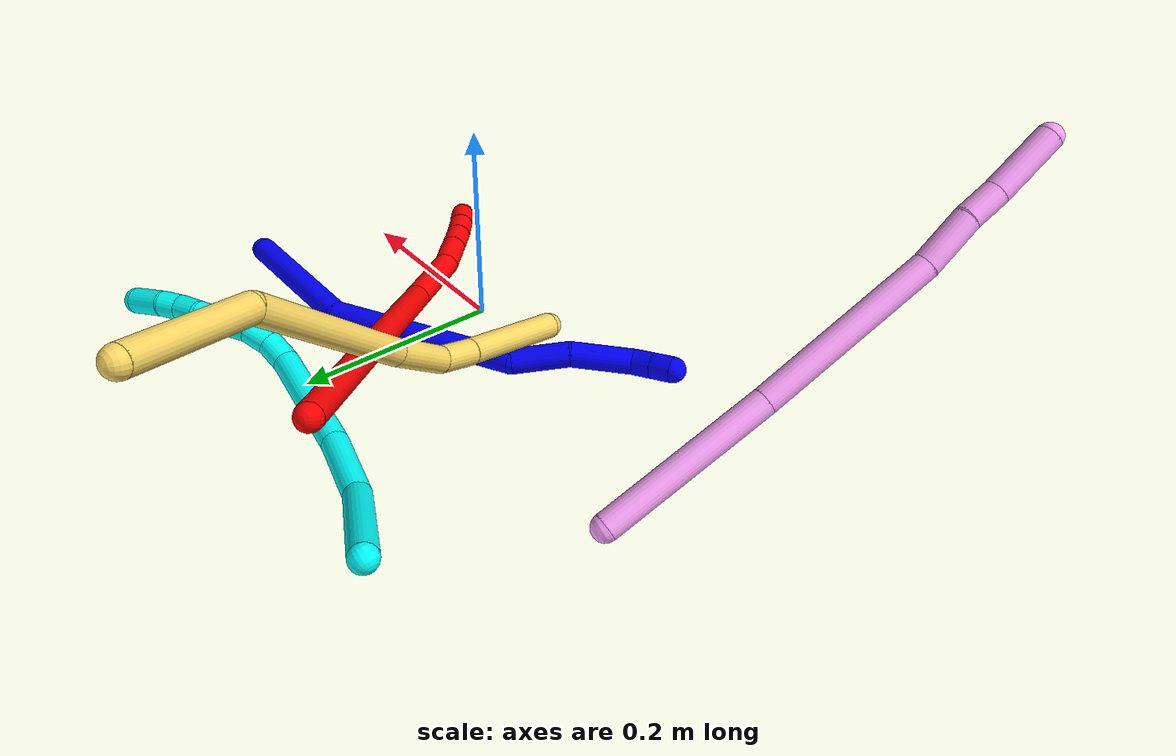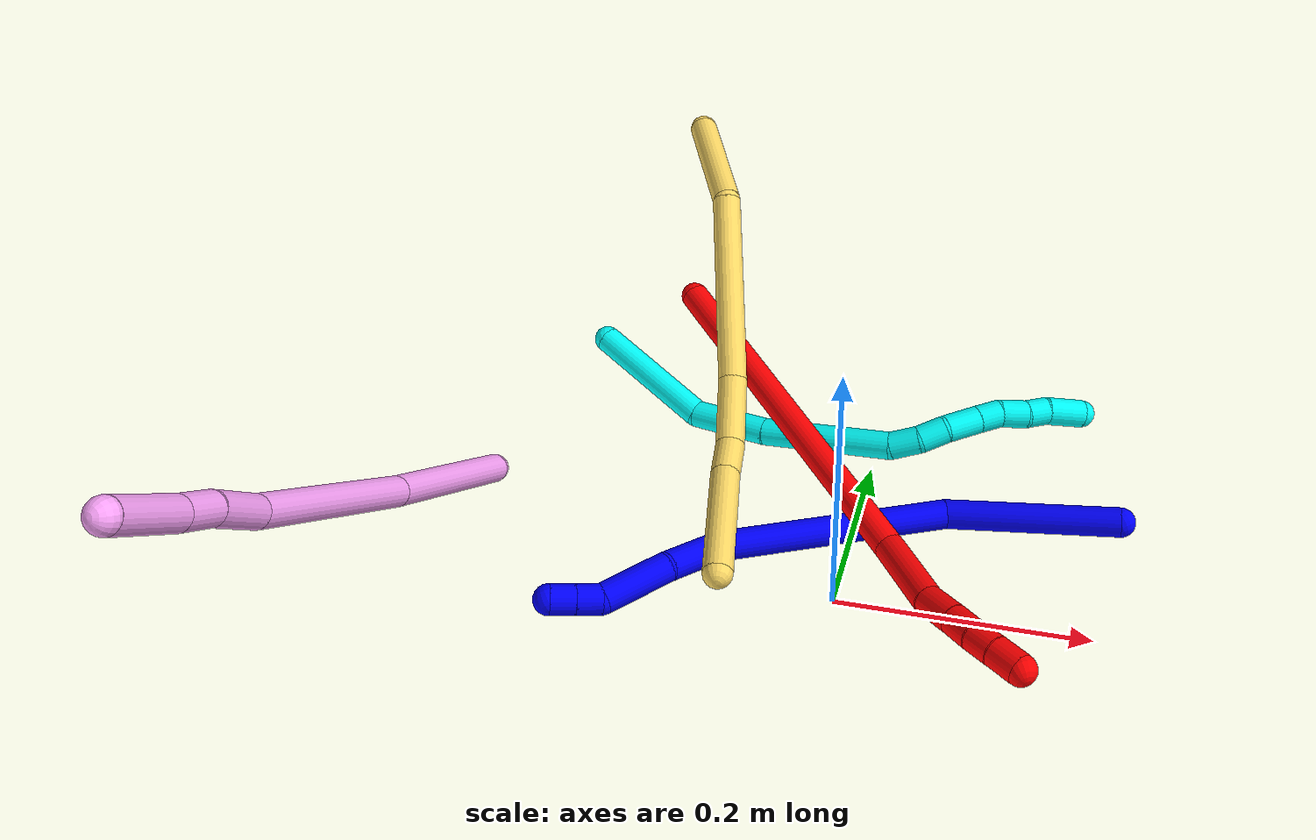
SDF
<sdf version="1.7">
 <world name="default">
  <plugin name="TubeGeneratorPlugin" filename="libtube_generator_plugin.so"/>
  <model name="photoneo_s_sensor">
   <static>1</static>
   <pose>0 0 2 1.57079 1.57079 3.14159</pose>
   <link name="link">
    <inertial><mass>0.1</mass></inertial>
    <sensor name="sensor" type="depth">
     <update_rate>30</update_rate>
     <camera>
      <horizontal_fov>1.22</horizontal_fov>
      <image><width>1920</width><height>1200</height><format>B8G8R8</format></image>
      <clip><near>0.1</near><far>4</far></clip>
      <depth_camera><output>points</output></depth_camera>
     </camera>
     <plugin name="camera_plugin" filename="libgazebo_ros_depth_camera.so">
      <baseline>0.2</baseline>
      <alwaysOn>1</alwaysOn>
      <updateRate>0.0</updateRate>
      <cameraName>camera_ir</cameraName>
      <imageTopicName>/camera/color/image_raw</imageTopicName>
      <cameraInfoTopicName>/camera/color/camera_info</cameraInfoTopicName>
      <depthImageTopicName>/camera/depth/image_raw</depthImageTopicName>
      <depthImageCameraInfoTopicName>/camera/depth/camera_info</depthImageCameraInfoTopicName>
      <pointCloudTopicName>/camera/depth/points</pointCloudTopicName>
      <frameName>fr_optical</frameName>
      <pointCloudCutoff>0.1</pointCloudCutoff>
      <pointCloudCutoffMax>2.0</pointCloudCutoffMax>
      <distortionK1>0</distortionK1>
      <distortionK2>0</distortionK2>
      <distortionK3>0</distortionK3>
      <distortionT1>0</distortionT1>
      <distortionT2>0</distortionT2>
      <CxPrime>0</CxPrime>
      <Cx>0</Cx>
      <Cy>0</Cy>
      <focalLength>0</focalLength>
      <hackBaseline>0</hackBaseline>
     </plugin>
    </sensor>
   </link>
  </model>
  <gravity>0 0 -9.8</gravity>
  <magnetic_field>6e-06 2.3e-05 -4.2e-05</magnetic_field>
  <atmosphere type="adiabatic"/>
  <physics name="default_physics" default="0" type="ode">
   <max_step_size>0.003</max_step_size>
   <real_time_factor>1</real_time_factor>
   <real_time_update_rate>1000</real_time_update_rate>
   <max_contacts>10000</max_contacts>
   <ode>
    <solver>
     <type>quick</type>
     <iters>100</iters>
     <sor>1.3</sor>
     <use_dynamic_moi_rescaling>0</use_dynamic_moi_rescaling>
    </solver>
    <constraints>
     <contact_max_correcting_vel>0</contact_max_correcting_vel>
     <contact_surface_layer>0.001</contact_surface_layer>
     <cfm>0</cfm>
     <erp>0.2</erp>
    </constraints>
   </ode>
  </physics>
  <scene><ambient>0.4 0.4 0.4 1</ambient><background>0.7 0.7 0.7 1</background><shadows>0</shadows></scene>
  <audio><device>default</device></audio>
  <spherical_coordinates>
   <surface_model>EARTH_WGS84</surface_model>
   <latitude_deg>0</latitude_deg>
   <longitude_deg>0</longitude_deg>
   <elevation>0</elevation>
   <heading_deg>0</heading_deg>
  </spherical_coordinates>
  <model name="bin">
   <static>1</static>
   <link name="bottom">
    <collision name="collision-bottom">
     <pose>0 0 -0.01 0 -0 0</pose>
     <geometry><box><size>0.8 0.6 0.02</size></box></geometry>
     <surface>
      <friction><ode><mu>100</mu><mu2>100</mu2></ode></friction>
      <contact><collide_bitmask>65535</collide_bitmask></contact>
     </surface>
    </collision>
   </link>
   <link name="west_wall">
    <collision name="collision-west_wall">
     <pose>-0.41 0 0.1 0 -0 0</pose>
     <geometry><box><size>0.02 0.6 0.2</size></box></geometry>
     <surface>
      <friction><ode><mu>100</mu><mu2>100</mu2></ode></friction>
      <contact><collide_bitmask>65535</collide_bitmask></contact>
     </surface>
    </collision>
   </link>
   <link name="east_wall">
    <collision name="collision-east_wall">
     <pose>0.41 0 0.1 0 -0 0</pose>
     <geometry><box><size>0.02 0.6 0.2</size></box></geometry>
     <surface>
      <friction><ode><mu>100</mu><mu2>100</mu2></ode></friction>
      <contact><collide_bitmask>65535</collide_bitmask></contact>
     </surface>
    </collision>
   </link>
   <link name="south_wall">
    <collision name="collision-south_wall">
     <pose>0 -0.31 0.1 0 -0 0</pose>
     <geometry><box><size>0.8 0.02 0.2</size></box></geometry>
     <surface>
      <friction><ode><mu>100</mu><mu2>100</mu2></ode></friction>
      <contact><collide_bitmask>65535</collide_bitmask></contact>
     </surface>
    </collision>
   </link>
   <link name="north_wall">
    <collision name="collision-north_wall">
     <pose>0 0.31 0.1 0 -0 0</pose>
     <geometry><box><size>0.8 0.02 0.2</size></box></geometry>
     <surface>
      <friction><ode><mu>100</mu><mu2>100</mu2></ode></friction>
      <contact><collide_bitmask>65535</collide_bitmask></contact>
     </surface>
    </collision>
   </link>
  </model>
  <model name="1">
   <static>0</static>
   <link name="1">
    <collision name="collision-cylinder-e_1_1_4">
     <pose>-0.064533 -0.00164 0.031621 0.051824 -1.11465 -0.032303</pose>
     <geometry><cylinder><radius>0.0125</radius><length>0.143765</length></cylinder></geometry>
     <surface>
      <friction><ode><mu>1.16</mu><mu2>1.16</mu2><slip1>0</slip1><slip2>0</slip2></ode></friction>
      <contact><ode><kp>1e+06</kp><kd>1</kd><max_vel>0</max_vel><min_depth>0.001</min_depth></ode></contact>
     </surface>
    </collision>
    <visual name="visual-cylinder-e_1_1_4">
     <pose>-0.064533 -0.00164 0.031621 0.051824 -1.11465 -0.032303</pose>
     <geometry><cylinder><radius>0.0125</radius><length>0.143765</length></cylinder></geometry>
     <material><ambient>0 0 1 1</ambient></material>
    </visual>
    <collision name="collision-cylinder-e_2_4_5">
     <pose>-0.214719 -0.045059 0.090187 0.997988 -1.0449 -0.608174</pose>
     <geometry><cylinder><radius>0.0125</radius><length>0.19807</length></cylinder></geometry>
     <surface>
      <friction><ode><mu>1.16</mu><mu2>1.16</mu2><slip1>0</slip1><slip2>0</slip2></ode></friction>
      <contact><ode><kp>1e+06</kp><kd>1</kd><max_vel>0</max_vel><min_depth>0.001</min_depth></ode></contact>
     </surface>
    </collision>
    <visual name="visual-cylinder-e_2_4_5">
     <pose>-0.214719 -0.045059 0.090187 0.997988 -1.0449 -0.608174</pose>
     <geometry><cylinder><radius>0.0125</radius><length>0.19807</length></cylinder></geometry>
     <material><ambient>0 0 1 1</ambient></material>
    </visual>
    <collision name="collision-cylinder-e_3_5_6">
     <pose>-0.317696 -0.108875 0.118557 1.50619 -0.665218 -0.626324</pose>
     <geometry><cylinder><radius>0.0125</radius><length>0.056135</length></cylinder></geometry>
     <surface>
      <friction><ode><mu>1.16</mu><mu2>1.16</mu2><slip1>0</slip1><slip2>0</slip2></ode></friction>
      <contact><ode><kp>1e+06</kp><kd>1</kd><max_vel>0</max_vel><min_depth>0.001</min_depth></ode></contact>
     </surface>
    </collision>
    <visual name="visual-cylinder-e_3_5_6">
     <pose>-0.317696 -0.108875 0.118557 1.50619 -0.665218 -0.626324</pose>
     <geometry><cylinder><radius>0.0125</radius><length>0.056135</length></cylinder></geometry>
     <material><ambient>0 0 1 1</ambient></material>
    </visual>
    <collision name="collision-cylinder-e_4_6_7">
     <pose>-0.358712 -0.149818 0.119112 1.61682 -0.896782 -0.933267</pose>
     <geometry><cylinder><radius>0.0125</radius><length>0.060645</length></cylinder></geometry>
     <surface>
      <friction><ode><mu>1.16</mu><mu2>1.16</mu2><slip1>0</slip1><slip2>0</slip2></ode></friction>
      <contact><ode><kp>1e+06</kp><kd>1</kd><max_vel>0</max_vel><min_depth>0.001</min_depth></ode></contact>
     </surface>
    </collision>
    <visual name="visual-cylinder-e_4_6_7">
     <pose>-0.358712 -0.149818 0.119112 1.61682 -0.896782 -0.933267</pose>
     <geometry><cylinder><radius>0.0125</radius><length>0.060645</length></cylinder></geometry>
     <material><ambient>0 0 1 1</ambient></material>
    </visual>
    <collision name="collision-cylinder-e_5_7_8">
     <pose>-0.390945 -0.173147 0.122324 0.8256 -0.956854 -0.44669</pose>
     <geometry><cylinder><radius>0.0125</radius><length>0.020901</length></cylinder></geometry>
     <surface>
      <friction><ode><mu>1.16</mu><mu2>1.16</mu2><slip1>0</slip1><slip2>0</slip2></ode></friction>
      <contact><ode><kp>1e+06</kp><kd>1</kd><max_vel>0</max_vel><min_depth>0.001</min_depth></ode></contact>
     </surface>
    </collision>
    <visual name="visual-cylinder-e_5_7_8">
     <pose>-0.390945 -0.173147 0.122324 0.8256 -0.956854 -0.44669</pose>
     <geometry><cylinder><radius>0.0125</radius><length>0.020901</length></cylinder></geometry>
     <material><ambient>0 0 1 1</ambient></material>
    </visual>
    <collision name="collision-cylinder-e_6_8_2">
     <pose>-0.407807 -0.181782 0.130644 0.782147 -0.948078 -0.416931</pose>
     <geometry><cylinder><radius>0.0125</radius><length>0.020484</length></cylinder></geometry>
     <surface>
      <friction><ode><mu>1.16</mu><mu2>1.16</mu2><slip1>0</slip1><slip2>0</slip2></ode></friction>
      <contact><ode><kp>1e+06</kp><kd>1</kd><max_vel>0</max_vel><min_depth>0.001</min_depth></ode></contact>
     </surface>
    </collision>
    <visual name="visual-cylinder-e_6_8_2">
     <pose>-0.407807 -0.181782 0.130644 0.782147 -0.948078 -0.416931</pose>
     <geometry><cylinder><radius>0.0125</radius><length>0.020484</length></cylinder></geometry>
     <material><ambient>0 0 1 1</ambient></material>
    </visual>
    <collision name="collision-sphere-2">
     <pose>-0.416127 -0.185993 0.134882 0 -0 0</pose>
     <geometry><sphere><radius>0.0125</radius></sphere></geometry>
     <surface>
      <friction><ode><mu>1.16</mu><mu2>1.16</mu2><slip1>0</slip1><slip2>0</slip2></ode></friction>
      <contact><ode><kp>1e+06</kp><kd>1</kd><max_vel>0</max_vel><min_depth>0.001</min_depth></ode></contact>
     </surface>
    </collision>
    <visual name="visual-sphere-2">
     <pose>-0.416127 -0.185993 0.134882 0 -0 0</pose>
     <geometry><sphere><radius>0.0125</radius></sphere></geometry>
     <material><ambient>0 0 1 1</ambient></material>
    </visual>
    <collision name="collision-sphere-4">
     <pose>-0.129066 -0.00328 0.063242 0 -0 0</pose>
     <geometry><sphere><radius>0.0125</radius></sphere></geometry>
     <surface>
      <friction><ode><mu>1.16</mu><mu2>1.16</mu2><slip1>0</slip1><slip2>0</slip2></ode></friction>
      <contact><ode><kp>1e+06</kp><kd>1</kd><max_vel>0</max_vel><min_depth>0.001</min_depth></ode></contact>
     </surface>
    </collision>
    <visual name="visual-sphere-4">
     <pose>-0.129066 -0.00328 0.063242 0 -0 0</pose>
     <geometry><sphere><radius>0.0125</radius></sphere></geometry>
     <material><ambient>0 0 1 1</ambient></material>
    </visual>
    <collision name="collision-sphere-1">
     <geometry><sphere><radius>0.0125</radius></sphere></geometry>
     <surface>
      <friction><ode><mu>1.16</mu><mu2>1.16</mu2><slip1>0</slip1><slip2>0</slip2></ode></friction>
      <contact><ode><kp>1e+06</kp><kd>1</kd><max_vel>0</max_vel><min_depth>0.001</min_depth></ode></contact>
     </surface>
    </collision>
    <visual name="visual-sphere-1">
     <geometry><sphere><radius>0.0125</radius></sphere></geometry>
     <material><ambient>0 0 1 1</ambient></material>
    </visual>
    <collision name="collision-sphere-8">
     <pose>-0.399487 -0.177572 0.126407 0 -0 0</pose>
     <geometry><sphere><radius>0.0125</radius></sphere></geometry>
     <surface>
      <friction><ode><mu>1.16</mu><mu2>1.16</mu2><slip1>0</slip1><slip2>0</slip2></ode></friction>
      <contact><ode><kp>1e+06</kp><kd>1</kd><max_vel>0</max_vel><min_depth>0.001</min_depth></ode></contact>
     </surface>
    </collision>
    <visual name="visual-sphere-8">
     <pose>-0.399487 -0.177572 0.126407 0 -0 0</pose>
     <geometry><sphere><radius>0.0125</radius></sphere></geometry>
     <material><ambient>0 0 1 1</ambient></material>
    </visual>
    <collision name="collision-sphere-5">
     <pose>-0.300371 -0.086838 0.117132 0 -0 0</pose>
     <geometry><sphere><radius>0.0125</radius></sphere></geometry>
     <surface>
      <friction><ode><mu>1.16</mu><mu2>1.16</mu2><slip1>0</slip1><slip2>0</slip2></ode></friction>
      <contact><ode><kp>1e+06</kp><kd>1</kd><max_vel>0</max_vel><min_depth>0.001</min_depth></ode></contact>
     </surface>
    </collision>
    <visual name="visual-sphere-5">
     <pose>-0.300371 -0.086838 0.117132 0 -0 0</pose>
     <geometry><sphere><radius>0.0125</radius></sphere></geometry>
     <material><ambient>0 0 1 1</ambient></material>
    </visual>
    <collision name="collision-sphere-6">
     <pose>-0.33502 -0.130912 0.119983 0 -0 0</pose>
     <geometry><sphere><radius>0.0125</radius></sphere></geometry>
     <surface>
      <friction><ode><mu>1.16</mu><mu2>1.16</mu2><slip1>0</slip1><slip2>0</slip2></ode></friction>
      <contact><ode><kp>1e+06</kp><kd>1</kd><max_vel>0</max_vel><min_depth>0.001</min_depth></ode></contact>
     </surface>
    </collision>
    <visual name="visual-sphere-6">
     <pose>-0.33502 -0.130912 0.119983 0 -0 0</pose>
     <geometry><sphere><radius>0.0125</radius></sphere></geometry>
     <material><ambient>0 0 1 1</ambient></material>
    </visual>
    <collision name="collision-sphere-7">
     <pose>-0.382403 -0.168723 0.118241 0 -0 0</pose>
     <geometry><sphere><radius>0.0125</radius></sphere></geometry>
     <surface>
      <friction><ode><mu>1.16</mu><mu2>1.16</mu2><slip1>0</slip1><slip2>0</slip2></ode></friction>
      <contact><ode><kp>1e+06</kp><kd>1</kd><max_vel>0</max_vel><min_depth>0.001</min_depth></ode></contact>
     </surface>
    </collision>
    <visual name="visual-sphere-7">
     <pose>-0.382403 -0.168723 0.118241 0 -0 0</pose>
     <geometry><sphere><radius>0.0125</radius></sphere></geometry>
     <material><ambient>0 0 1 1</ambient></material>
    </visual>
    <inertial>
     <pose>-0.215839 -0.063401 0.083042 0 -0 0</pose>
     <mass>0.5</mass>
     <inertia>
      <ixx>0.000159</ixx>
      <ixy>0</ixy>
      <ixz>0</ixz>
      <iyy>0.000614</iyy>
      <iyz>0</iyz>
      <izz>0.001144</izz>
     </inertia>
    </inertial>
   </link>
   <pose>0.216568 0.137275 0.021101 -0.532924 -0.478555 0.265956</pose>
  </model>
  <model name="2">
   <static>0</static>
   <link name="2">
    <collision name="collision-cylinder-e_1_1_4">
     <pose>0.034963 -0.018668 -0.158304 3.02421 0.215922 2.14803</pose>
     <geometry><cylinder><radius>0.0125</radius><length>0.326382</length></cylinder></geometry>
     <surface>
      <friction><ode><mu>1.16</mu><mu2>1.16</mu2><slip1>0</slip1><slip2>0</slip2></ode></friction>
      <contact><ode><kp>1e+06</kp><kd>1</kd><max_vel>0</max_vel><min_depth>0.001</min_depth></ode></contact>
     </surface>
    </collision>
    <visual name="visual-cylinder-e_1_1_4">
     <pose>0.034963 -0.018668 -0.158304 3.02421 0.215922 2.14803</pose>
     <geometry><cylinder><radius>0.0125</radius><length>0.326382</length></cylinder></geometry>
     <material><ambient>1 0 0 1</ambient></material>
    </visual>
    <collision name="collision-cylinder-e_2_4_5">
     <pose>0.069338 -0.050261 -0.349938 2.77163 -0.016454 -0.087881</pose>
     <geometry><cylinder><radius>0.0125</radius><length>0.071505</length></cylinder></geometry>
     <surface>
      <friction><ode><mu>1.16</mu><mu2>1.16</mu2><slip1>0</slip1><slip2>0</slip2></ode></friction>
      <contact><ode><kp>1e+06</kp><kd>1</kd><max_vel>0</max_vel><min_depth>0.001</min_depth></ode></contact>
     </surface>
    </collision>
    <visual name="visual-cylinder-e_2_4_5">
     <pose>0.069338 -0.050261 -0.349938 2.77163 -0.016454 -0.087881</pose>
     <geometry><cylinder><radius>0.0125</radius><length>0.071505</length></cylinder></geometry>
     <material><ambient>1 0 0 1</ambient></material>
    </visual>
    <collision name="collision-cylinder-e_3_5_6">
     <pose>0.071042 -0.071173 -0.397131 2.61894 0.142271 0.520775</pose>
     <geometry><cylinder><radius>0.0125</radius><length>0.032326</length></cylinder></geometry>
     <surface>
      <friction><ode><mu>1.16</mu><mu2>1.16</mu2><slip1>0</slip1><slip2>0</slip2></ode></friction>
      <contact><ode><kp>1e+06</kp><kd>1</kd><max_vel>0</max_vel><min_depth>0.001</min_depth></ode></contact>
     </surface>
    </collision>
    <visual name="visual-cylinder-e_3_5_6">
     <pose>0.071042 -0.071173 -0.397131 2.61894 0.142271 0.520775</pose>
     <geometry><cylinder><radius>0.0125</radius><length>0.032326</length></cylinder></geometry>
     <material><ambient>1 0 0 1</ambient></material>
    </visual>
    <collision name="collision-cylinder-e_4_6_7">
     <pose>0.075255 -0.084534 -0.421489 2.66834 0.161527 0.647661</pose>
     <geometry><cylinder><radius>0.0125</radius><length>0.023891</length></cylinder></geometry>
     <surface>
      <friction><ode><mu>1.16</mu><mu2>1.16</mu2><slip1>0</slip1><slip2>0</slip2></ode></friction>
      <contact><ode><kp>1e+06</kp><kd>1</kd><max_vel>0</max_vel><min_depth>0.001</min_depth></ode></contact>
     </surface>
    </collision>
    <visual name="visual-cylinder-e_4_6_7">
     <pose>0.075255 -0.084534 -0.421489 2.66834 0.161527 0.647661</pose>
     <geometry><cylinder><radius>0.0125</radius><length>0.023891</length></cylinder></geometry>
     <material><ambient>1 0 0 1</ambient></material>
    </visual>
    <collision name="collision-cylinder-e_5_7_8">
     <pose>0.079945 -0.094524 -0.441544 2.69174 0.255121 1.02184</pose>
     <geometry><cylinder><radius>0.0125</radius><length>0.021945</length></cylinder></geometry>
     <surface>
      <friction><ode><mu>1.16</mu><mu2>1.16</mu2><slip1>0</slip1><slip2>0</slip2></ode></friction>
      <contact><ode><kp>1e+06</kp><kd>1</kd><max_vel>0</max_vel><min_depth>0.001</min_depth></ode></contact>
     </surface>
    </collision>
    <visual name="visual-cylinder-e_5_7_8">
     <pose>0.079945 -0.094524 -0.441544 2.69174 0.255121 1.02184</pose>
     <geometry><cylinder><radius>0.0125</radius><length>0.021945</length></cylinder></geometry>
     <material><ambient>1 0 0 1</ambient></material>
    </visual>
    <collision name="collision-cylinder-e_6_8_2">
     <pose>0.086489 -0.103364 -0.461656 2.76084 0.320663 1.39636</pose>
     <geometry><cylinder><radius>0.0125</radius><length>0.023952</length></cylinder></geometry>
     <surface>
      <friction><ode><mu>1.16</mu><mu2>1.16</mu2><slip1>0</slip1><slip2>0</slip2></ode></friction>
      <contact><ode><kp>1e+06</kp><kd>1</kd><max_vel>0</max_vel><min_depth>0.001</min_depth></ode></contact>
     </surface>
    </collision>
    <visual name="visual-cylinder-e_6_8_2">
     <pose>0.086489 -0.103364 -0.461656 2.76084 0.320663 1.39636</pose>
     <geometry><cylinder><radius>0.0125</radius><length>0.023952</length></cylinder></geometry>
     <material><ambient>1 0 0 1</ambient></material>
    </visual>
    <collision name="collision-sphere-2">
     <pose>0.090263 -0.107588 -0.472208 0 -0 0</pose>
     <geometry><sphere><radius>0.0125</radius></sphere></geometry>
     <surface>
      <friction><ode><mu>1.16</mu><mu2>1.16</mu2><slip1>0</slip1><slip2>0</slip2></ode></friction>
      <contact><ode><kp>1e+06</kp><kd>1</kd><max_vel>0</max_vel><min_depth>0.001</min_depth></ode></contact>
     </surface>
    </collision>
    <visual name="visual-sphere-2">
     <pose>0.090263 -0.107588 -0.472208 0 -0 0</pose>
     <geometry><sphere><radius>0.0125</radius></sphere></geometry>
     <material><ambient>1 0 0 1</ambient></material>
    </visual>
    <collision name="collision-sphere-4">
     <pose>0.069927 -0.037335 -0.316609 0 -0 0</pose>
     <geometry><sphere><radius>0.0125</radius></sphere></geometry>
     <surface>
      <friction><ode><mu>1.16</mu><mu2>1.16</mu2><slip1>0</slip1><slip2>0</slip2></ode></friction>
      <contact><ode><kp>1e+06</kp><kd>1</kd><max_vel>0</max_vel><min_depth>0.001</min_depth></ode></contact>
     </surface>
    </collision>
    <visual name="visual-sphere-4">
     <pose>0.069927 -0.037335 -0.316609 0 -0 0</pose>
     <geometry><sphere><radius>0.0125</radius></sphere></geometry>
     <material><ambient>1 0 0 1</ambient></material>
    </visual>
    <collision name="collision-sphere-1">
     <geometry><sphere><radius>0.0125</radius></sphere></geometry>
     <surface>
      <friction><ode><mu>1.16</mu><mu2>1.16</mu2><slip1>0</slip1><slip2>0</slip2></ode></friction>
      <contact><ode><kp>1e+06</kp><kd>1</kd><max_vel>0</max_vel><min_depth>0.001</min_depth></ode></contact>
     </surface>
    </collision>
    <visual name="visual-sphere-1">
     <geometry><sphere><radius>0.0125</radius></sphere></geometry>
     <material><ambient>1 0 0 1</ambient></material>
    </visual>
    <collision name="collision-sphere-8">
     <pose>0.082714 -0.099141 -0.451105 0 -0 0</pose>
     <geometry><sphere><radius>0.0125</radius></sphere></geometry>
     <surface>
      <friction><ode><mu>1.16</mu><mu2>1.16</mu2><slip1>0</slip1><slip2>0</slip2></ode></friction>
      <contact><ode><kp>1e+06</kp><kd>1</kd><max_vel>0</max_vel><min_depth>0.001</min_depth></ode></contact>
     </surface>
    </collision>
    <visual name="visual-sphere-8">
     <pose>0.082714 -0.099141 -0.451105 0 -0 0</pose>
     <geometry><sphere><radius>0.0125</radius></sphere></geometry>
     <material><ambient>1 0 0 1</ambient></material>
    </visual>
    <collision name="collision-sphere-5">
     <pose>0.06875 -0.063186 -0.383267 0 -0 0</pose>
     <geometry><sphere><radius>0.0125</radius></sphere></geometry>
     <surface>
      <friction><ode><mu>1.16</mu><mu2>1.16</mu2><slip1>0</slip1><slip2>0</slip2></ode></friction>
      <contact><ode><kp>1e+06</kp><kd>1</kd><max_vel>0</max_vel><min_depth>0.001</min_depth></ode></contact>
     </surface>
    </collision>
    <visual name="visual-sphere-5">
     <pose>0.06875 -0.063186 -0.383267 0 -0 0</pose>
     <geometry><sphere><radius>0.0125</radius></sphere></geometry>
     <material><ambient>1 0 0 1</ambient></material>
    </visual>
    <collision name="collision-sphere-6">
     <pose>0.073334 -0.07916 -0.410995 0 -0 0</pose>
     <geometry><sphere><radius>0.0125</radius></sphere></geometry>
     <surface>
      <friction><ode><mu>1.16</mu><mu2>1.16</mu2><slip1>0</slip1><slip2>0</slip2></ode></friction>
      <contact><ode><kp>1e+06</kp><kd>1</kd><max_vel>0</max_vel><min_depth>0.001</min_depth></ode></contact>
     </surface>
    </collision>
    <visual name="visual-sphere-6">
     <pose>0.073334 -0.07916 -0.410995 0 -0 0</pose>
     <geometry><sphere><radius>0.0125</radius></sphere></geometry>
     <material><ambient>1 0 0 1</ambient></material>
    </visual>
    <collision name="collision-sphere-7">
     <pose>0.077176 -0.089907 -0.431983 0 -0 0</pose>
     <geometry><sphere><radius>0.0125</radius></sphere></geometry>
     <surface>
      <friction><ode><mu>1.16</mu><mu2>1.16</mu2><slip1>0</slip1><slip2>0</slip2></ode></friction>
      <contact><ode><kp>1e+06</kp><kd>1</kd><max_vel>0</max_vel><min_depth>0.001</min_depth></ode></contact>
     </surface>
    </collision>
    <visual name="visual-sphere-7">
     <pose>0.077176 -0.089907 -0.431983 0 -0 0</pose>
     <geometry><sphere><radius>0.0125</radius></sphere></geometry>
     <material><ambient>1 0 0 1</ambient></material>
    </visual>
    <inertial>
     <pose>0.04858 -0.037114 -0.240689 0 -0 0</pose>
     <mass>0.5</mass>
     <inertia>
      <ixx>0.000881</ixx>
      <ixy>0</ixy>
      <ixz>0</ixz>
      <iyy>0.00398</iyy>
      <iyz>0</iyz>
      <izz>-0.000313</izz>
     </inertia>
    </inertial>
   </link>
   <pose>-0.18431 0.275168 0.119447 -1.16508 0.117105 0.594223</pose>
  </model>
  <model name="3">
   <static>0</static>
   <link name="3">
    <collision name="collision-cylinder-e_1_1_4">
     <pose>0.047818 0.005125 -0.036942 -3.00375 0.90841 -2.86069</pose>
     <geometry><cylinder><radius>0.0125</radius><length>0.121285</length></cylinder></geometry>
     <surface>
      <friction><ode><mu>1.16</mu><mu2>1.16</mu2><slip1>0</slip1><slip2>0</slip2></ode></friction>
      <contact><ode><kp>1e+06</kp><kd>1</kd><max_vel>0</max_vel><min_depth>0.001</min_depth></ode></contact>
     </surface>
    </collision>
    <visual name="visual-cylinder-e_1_1_4">
     <pose>0.047818 0.005125 -0.036942 -3.00375 0.90841 -2.86069</pose>
     <geometry><cylinder><radius>0.0125</radius><length>0.121285</length></cylinder></geometry>
     <material><ambient>0.003922 1 0.996078 1</ambient></material>
    </visual>
    <collision name="collision-cylinder-e_2_4_5">
     <pose>0.112767 0.011948 -0.105304 -3.08757 0.49852 -2.93011</pose>
     <geometry><cylinder><radius>0.0125</radius><length>0.071655</length></cylinder></geometry>
     <surface>
      <friction><ode><mu>1.16</mu><mu2>1.16</mu2><slip1>0</slip1><slip2>0</slip2></ode></friction>
      <contact><ode><kp>1e+06</kp><kd>1</kd><max_vel>0</max_vel><min_depth>0.001</min_depth></ode></contact>
     </surface>
    </collision>
    <visual name="visual-cylinder-e_2_4_5">
     <pose>0.112767 0.011948 -0.105304 -3.08757 0.49852 -2.93011</pose>
     <geometry><cylinder><radius>0.0125</radius><length>0.071655</length></cylinder></geometry>
     <material><ambient>0.003922 1 0.996078 1</ambient></material>
    </visual>
    <collision name="collision-cylinder-e_3_5_6">
     <pose>0.151849 0.012078 -0.192644 3.11353 0.373952 2.99353</pose>
     <geometry><cylinder><radius>0.0125</radius><length>0.120188</length></cylinder></geometry>
     <surface>
      <friction><ode><mu>1.16</mu><mu2>1.16</mu2><slip1>0</slip1><slip2>0</slip2></ode></friction>
      <contact><ode><kp>1e+06</kp><kd>1</kd><max_vel>0</max_vel><min_depth>0.001</min_depth></ode></contact>
     </surface>
    </collision>
    <visual name="visual-cylinder-e_3_5_6">
     <pose>0.151849 0.012078 -0.192644 3.11353 0.373952 2.99353</pose>
     <geometry><cylinder><radius>0.0125</radius><length>0.120188</length></cylinder></geometry>
     <material><ambient>0.003922 1 0.996078 1</ambient></material>
    </visual>
    <collision name="collision-cylinder-e_4_6_7">
     <pose>0.174615 0.008426 -0.261804 2.98561 0.060673 0.740759</pose>
     <geometry><cylinder><radius>0.0125</radius><length>0.026859</length></cylinder></geometry>
     <surface>
      <friction><ode><mu>1.16</mu><mu2>1.16</mu2><slip1>0</slip1><slip2>0</slip2></ode></friction>
      <contact><ode><kp>1e+06</kp><kd>1</kd><max_vel>0</max_vel><min_depth>0.001</min_depth></ode></contact>
     </surface>
    </collision>
    <visual name="visual-cylinder-e_4_6_7">
     <pose>0.174615 0.008426 -0.261804 2.98561 0.060673 0.740759</pose>
     <geometry><cylinder><radius>0.0125</radius><length>0.026859</length></cylinder></geometry>
     <material><ambient>0.003922 1 0.996078 1</ambient></material>
    </visual>
    <collision name="collision-cylinder-e_5_7_8">
     <pose>0.174282 0.001443 -0.286411 2.73447 -0.092431 -0.440819</pose>
     <geometry><cylinder><radius>0.0125</radius><length>0.024858</length></cylinder></geometry>
     <surface>
      <friction><ode><mu>1.16</mu><mu2>1.16</mu2><slip1>0</slip1><slip2>0</slip2></ode></friction>
      <contact><ode><kp>1e+06</kp><kd>1</kd><max_vel>0</max_vel><min_depth>0.001</min_depth></ode></contact>
     </surface>
    </collision>
    <visual name="visual-cylinder-e_5_7_8">
     <pose>0.174282 0.001443 -0.286411 2.73447 -0.092431 -0.440819</pose>
     <geometry><cylinder><radius>0.0125</radius><length>0.024858</length></cylinder></geometry>
     <material><ambient>0.003922 1 0.996078 1</ambient></material>
    </visual>
    <collision name="collision-cylinder-e_6_8_9">
     <pose>0.173202 -0.013325 -0.310526 2.48296 0.004115 0.012039</pose>
     <geometry><cylinder><radius>0.0125</radius><length>0.032246</length></cylinder></geometry>
     <surface>
      <friction><ode><mu>1.16</mu><mu2>1.16</mu2><slip1>0</slip1><slip2>0</slip2></ode></friction>
      <contact><ode><kp>1e+06</kp><kd>1</kd><max_vel>0</max_vel><min_depth>0.001</min_depth></ode></contact>
     </surface>
    </collision>
    <visual name="visual-cylinder-e_6_8_9">
     <pose>0.173202 -0.013325 -0.310526 2.48296 0.004115 0.012039</pose>
     <geometry><cylinder><radius>0.0125</radius><length>0.032246</length></cylinder></geometry>
     <material><ambient>0.003922 1 0.996078 1</ambient></material>
    </visual>
    <collision name="collision-cylinder-e_7_9_10">
     <pose>0.173508 -0.029549 -0.332293 2.52762 0.021758 0.068611</pose>
     <geometry><cylinder><radius>0.0125</radius><length>0.022068</length></cylinder></geometry>
     <surface>
      <friction><ode><mu>1.16</mu><mu2>1.16</mu2><slip1>0</slip1><slip2>0</slip2></ode></friction>
      <contact><ode><kp>1e+06</kp><kd>1</kd><max_vel>0</max_vel><min_depth>0.001</min_depth></ode></contact>
     </surface>
    </collision>
    <visual name="visual-cylinder-e_7_9_10">
     <pose>0.173508 -0.029549 -0.332293 2.52762 0.021758 0.068611</pose>
     <geometry><cylinder><radius>0.0125</radius><length>0.022068</length></cylinder></geometry>
     <material><ambient>0.003922 1 0.996078 1</ambient></material>
    </visual>
    <collision name="collision-cylinder-e_8_10_11">
     <pose>0.177559 -0.042175 -0.351369 2.58418 0.311085 1.0026</pose>
     <geometry><cylinder><radius>0.0125</radius><length>0.024903</length></cylinder></geometry>
     <surface>
      <friction><ode><mu>1.16</mu><mu2>1.16</mu2><slip1>0</slip1><slip2>0</slip2></ode></friction>
      <contact><ode><kp>1e+06</kp><kd>1</kd><max_vel>0</max_vel><min_depth>0.001</min_depth></ode></contact>
     </surface>
    </collision>
    <visual name="visual-cylinder-e_8_10_11">
     <pose>0.177559 -0.042175 -0.351369 2.58418 0.311085 1.0026</pose>
     <geometry><cylinder><radius>0.0125</radius><length>0.024903</length></cylinder></geometry>
     <material><ambient>0.003922 1 0.996078 1</ambient></material>
    </visual>
    <collision name="collision-cylinder-e_9_11_12">
     <pose>0.182592 -0.054936 -0.369263 2.44971 0.119446 0.328793</pose>
     <geometry><cylinder><radius>0.0125</radius><length>0.020495</length></cylinder></geometry>
     <surface>
      <friction><ode><mu>1.16</mu><mu2>1.16</mu2><slip1>0</slip1><slip2>0</slip2></ode></friction>
      <contact><ode><kp>1e+06</kp><kd>1</kd><max_vel>0</max_vel><min_depth>0.001</min_depth></ode></contact>
     </surface>
    </collision>
    <visual name="visual-cylinder-e_9_11_12">
     <pose>0.182592 -0.054936 -0.369263 2.44971 0.119446 0.328793</pose>
     <geometry><cylinder><radius>0.0125</radius><length>0.020495</length></cylinder></geometry>
     <material><ambient>0.003922 1 0.996078 1</ambient></material>
    </visual>
    <collision name="collision-cylinder-e_10_12_2">
     <pose>0.189766 -0.07229 -0.389771 2.43298 0.342582 0.874842</pose>
     <geometry><cylinder><radius>0.0125</radius><length>0.035444</length></cylinder></geometry>
     <surface>
      <friction><ode><mu>1.16</mu><mu2>1.16</mu2><slip1>0</slip1><slip2>0</slip2></ode></friction>
      <contact><ode><kp>1e+06</kp><kd>1</kd><max_vel>0</max_vel><min_depth>0.001</min_depth></ode></contact>
     </surface>
    </collision>
    <visual name="visual-cylinder-e_10_12_2">
     <pose>0.189766 -0.07229 -0.389771 2.43298 0.342582 0.874842</pose>
     <geometry><cylinder><radius>0.0125</radius><length>0.035444</length></cylinder></geometry>
     <material><ambient>0.003922 1 0.996078 1</ambient></material>
    </visual>
    <collision name="collision-sphere-2">
     <pose>0.195719 -0.083153 -0.402445 0 -0 0</pose>
     <geometry><sphere><radius>0.0125</radius></sphere></geometry>
     <surface>
      <friction><ode><mu>1.16</mu><mu2>1.16</mu2><slip1>0</slip1><slip2>0</slip2></ode></friction>
      <contact><ode><kp>1e+06</kp><kd>1</kd><max_vel>0</max_vel><min_depth>0.001</min_depth></ode></contact>
     </surface>
    </collision>
    <visual name="visual-sphere-2">
     <pose>0.195719 -0.083153 -0.402445 0 -0 0</pose>
     <geometry><sphere><radius>0.0125</radius></sphere></geometry>
     <material><ambient>0.003922 1 0.996078 1</ambient></material>
    </visual>
    <collision name="collision-sphere-12">
     <pose>0.183813 -0.061427 -0.377098 0 -0 0</pose>
     <geometry><sphere><radius>0.0125</radius></sphere></geometry>
     <surface>
      <friction><ode><mu>1.16</mu><mu2>1.16</mu2><slip1>0</slip1><slip2>0</slip2></ode></friction>
      <contact><ode><kp>1e+06</kp><kd>1</kd><max_vel>0</max_vel><min_depth>0.001</min_depth></ode></contact>
     </surface>
    </collision>
    <visual name="visual-sphere-12">
     <pose>0.183813 -0.061427 -0.377098 0 -0 0</pose>
     <geometry><sphere><radius>0.0125</radius></sphere></geometry>
     <material><ambient>0.003922 1 0.996078 1</ambient></material>
    </visual>
    <collision name="collision-sphere-11">
     <pose>0.181371 -0.048445 -0.361428 0 -0 0</pose>
     <geometry><sphere><radius>0.0125</radius></sphere></geometry>
     <surface>
      <friction><ode><mu>1.16</mu><mu2>1.16</mu2><slip1>0</slip1><slip2>0</slip2></ode></friction>
      <contact><ode><kp>1e+06</kp><kd>1</kd><max_vel>0</max_vel><min_depth>0.001</min_depth></ode></contact>
     </surface>
    </collision>
    <visual name="visual-sphere-11">
     <pose>0.181371 -0.048445 -0.361428 0 -0 0</pose>
     <geometry><sphere><radius>0.0125</radius></sphere></geometry>
     <material><ambient>0.003922 1 0.996078 1</ambient></material>
    </visual>
    <collision name="collision-sphere-10">
     <pose>0.173748 -0.035904 -0.341309 0 -0 0</pose>
     <geometry><sphere><radius>0.0125</radius></sphere></geometry>
     <surface>
      <friction><ode><mu>1.16</mu><mu2>1.16</mu2><slip1>0</slip1><slip2>0</slip2></ode></friction>
      <contact><ode><kp>1e+06</kp><kd>1</kd><max_vel>0</max_vel><min_depth>0.001</min_depth></ode></contact>
     </surface>
    </collision>
    <visual name="visual-sphere-10">
     <pose>0.173748 -0.035904 -0.341309 0 -0 0</pose>
     <geometry><sphere><radius>0.0125</radius></sphere></geometry>
     <material><ambient>0.003922 1 0.996078 1</ambient></material>
    </visual>
    <collision name="collision-sphere-9">
     <pose>0.173268 -0.023193 -0.323276 0 -0 0</pose>
     <geometry><sphere><radius>0.0125</radius></sphere></geometry>
     <surface>
      <friction><ode><mu>1.16</mu><mu2>1.16</mu2><slip1>0</slip1><slip2>0</slip2></ode></friction>
      <contact><ode><kp>1e+06</kp><kd>1</kd><max_vel>0</max_vel><min_depth>0.001</min_depth></ode></contact>
     </surface>
    </collision>
    <visual name="visual-sphere-9">
     <pose>0.173268 -0.023193 -0.323276 0 -0 0</pose>
     <geometry><sphere><radius>0.0125</radius></sphere></geometry>
     <material><ambient>0.003922 1 0.996078 1</ambient></material>
    </visual>
    <collision name="collision-sphere-4">
     <pose>0.095637 0.010249 -0.073883 0 -0 0</pose>
     <geometry><sphere><radius>0.0125</radius></sphere></geometry>
     <surface>
      <friction><ode><mu>1.16</mu><mu2>1.16</mu2><slip1>0</slip1><slip2>0</slip2></ode></friction>
      <contact><ode><kp>1e+06</kp><kd>1</kd><max_vel>0</max_vel><min_depth>0.001</min_depth></ode></contact>
     </surface>
    </collision>
    <visual name="visual-sphere-4">
     <pose>0.095637 0.010249 -0.073883 0 -0 0</pose>
     <geometry><sphere><radius>0.0125</radius></sphere></geometry>
     <material><ambient>0.003922 1 0.996078 1</ambient></material>
    </visual>
    <collision name="collision-sphere-1">
     <geometry><sphere><radius>0.0125</radius></sphere></geometry>
     <surface>
      <friction><ode><mu>1.16</mu><mu2>1.16</mu2><slip1>0</slip1><slip2>0</slip2></ode></friction>
      <contact><ode><kp>1e+06</kp><kd>1</kd><max_vel>0</max_vel><min_depth>0.001</min_depth></ode></contact>
     </surface>
    </collision>
    <visual name="visual-sphere-1">
     <geometry><sphere><radius>0.0125</radius></sphere></geometry>
     <material><ambient>0.003922 1 0.996078 1</ambient></material>
    </visual>
    <collision name="collision-sphere-8">
     <pose>0.173135 -0.003458 -0.297775 0 -0 0</pose>
     <geometry><sphere><radius>0.0125</radius></sphere></geometry>
     <surface>
      <friction><ode><mu>1.16</mu><mu2>1.16</mu2><slip1>0</slip1><slip2>0</slip2></ode></friction>
      <contact><ode><kp>1e+06</kp><kd>1</kd><max_vel>0</max_vel><min_depth>0.001</min_depth></ode></contact>
     </surface>
    </collision>
    <visual name="visual-sphere-8">
     <pose>0.173135 -0.003458 -0.297775 0 -0 0</pose>
     <geometry><sphere><radius>0.0125</radius></sphere></geometry>
     <material><ambient>0.003922 1 0.996078 1</ambient></material>
    </visual>
    <collision name="collision-sphere-5">
     <pose>0.129897 0.013647 -0.136725 0 -0 0</pose>
     <geometry><sphere><radius>0.0125</radius></sphere></geometry>
     <surface>
      <friction><ode><mu>1.16</mu><mu2>1.16</mu2><slip1>0</slip1><slip2>0</slip2></ode></friction>
      <contact><ode><kp>1e+06</kp><kd>1</kd><max_vel>0</max_vel><min_depth>0.001</min_depth></ode></contact>
     </surface>
    </collision>
    <visual name="visual-sphere-5">
     <pose>0.129897 0.013647 -0.136725 0 -0 0</pose>
     <geometry><sphere><radius>0.0125</radius></sphere></geometry>
     <material><ambient>0.003922 1 0.996078 1</ambient></material>
    </visual>
    <collision name="collision-sphere-6">
     <pose>0.173801 0.010508 -0.248562 0 -0 0</pose>
     <geometry><sphere><radius>0.0125</radius></sphere></geometry>
     <surface>
      <friction><ode><mu>1.16</mu><mu2>1.16</mu2><slip1>0</slip1><slip2>0</slip2></ode></friction>
      <contact><ode><kp>1e+06</kp><kd>1</kd><max_vel>0</max_vel><min_depth>0.001</min_depth></ode></contact>
     </surface>
    </collision>
    <visual name="visual-sphere-6">
     <pose>0.173801 0.010508 -0.248562 0 -0 0</pose>
     <geometry><sphere><radius>0.0125</radius></sphere></geometry>
     <material><ambient>0.003922 1 0.996078 1</ambient></material>
    </visual>
    <collision name="collision-sphere-7">
     <pose>0.17543 0.006343 -0.275046 0 -0 0</pose>
     <geometry><sphere><radius>0.0125</radius></sphere></geometry>
     <surface>
      <friction><ode><mu>1.16</mu><mu2>1.16</mu2><slip1>0</slip1><slip2>0</slip2></ode></friction>
      <contact><ode><kp>1e+06</kp><kd>1</kd><max_vel>0</max_vel><min_depth>0.001</min_depth></ode></contact>
     </surface>
    </collision>
    <visual name="visual-sphere-7">
     <pose>0.17543 0.006343 -0.275046 0 -0 0</pose>
     <geometry><sphere><radius>0.0125</radius></sphere></geometry>
     <material><ambient>0.003922 1 0.996078 1</ambient></material>
    </visual>
    <inertial>
     <pose>0.130913 -0.005257 -0.19362 0 -0 0</pose>
     <mass>0.5</mass>
     <inertia>
      <ixx>-0.000231</ixx>
      <ixy>0</ixy>
      <ixz>0</ixz>
      <iyy>0.000308</iyy>
      <iyz>0</iyz>
      <izz>-0.000226</izz>
     </inertia>
    </inertial>
   </link>
   <pose>-0.276551 0.288502 0.056415 2.43736 0.975627 -0.792882</pose>
  </model>
  <model name="4">
   <static>0</static>
   <link name="4">
    <collision name="collision-cylinder-e_1_1_4">
     <pose>-0.002872 -0.007807 0.082278 0.0946 -0.034736 -0.001644</pose>
     <geometry><cylinder><radius>0.0125</radius><length>0.165396</length></cylinder></geometry>
     <surface>
      <friction><ode><mu>1.16</mu><mu2>1.16</mu2><slip1>0</slip1><slip2>0</slip2></ode></friction>
      <contact><ode><kp>1e+06</kp><kd>1</kd><max_vel>0</max_vel><min_depth>0.001</min_depth></ode></contact>
     </surface>
    </collision>
    <visual name="visual-cylinder-e_1_1_4">
     <pose>-0.002872 -0.007807 0.082278 0.0946 -0.034736 -0.001644</pose>
     <geometry><cylinder><radius>0.0125</radius><length>0.165396</length></cylinder></geometry>
     <material><ambient>1 0.65098 0.996078 1</ambient></material>
    </visual>
    <collision name="collision-cylinder-e_2_4_5">
     <pose>-0.004925 -0.026474 0.253296 0.121774 0.009163 0.000559</pose>
     <geometry><cylinder><radius>0.0125</radius><length>0.178809</length></cylinder></geometry>
     <surface>
      <friction><ode><mu>1.16</mu><mu2>1.16</mu2><slip1>0</slip1><slip2>0</slip2></ode></friction>
      <contact><ode><kp>1e+06</kp><kd>1</kd><max_vel>0</max_vel><min_depth>0.001</min_depth></ode></contact>
     </surface>
    </collision>
    <visual name="visual-cylinder-e_2_4_5">
     <pose>-0.004925 -0.026474 0.253296 0.121774 0.009163 0.000559</pose>
     <geometry><cylinder><radius>0.0125</radius><length>0.178809</length></cylinder></geometry>
     <material><ambient>1 0.65098 0.996078 1</ambient></material>
    </visual>
    <collision name="collision-cylinder-e_3_5_6">
     <pose>-0.001638 -0.044184 0.367739 0.260445 0.09248 0.01212</pose>
     <geometry><cylinder><radius>0.0125</radius><length>0.053432</length></cylinder></geometry>
     <surface>
      <friction><ode><mu>1.16</mu><mu2>1.16</mu2><slip1>0</slip1><slip2>0</slip2></ode></friction>
      <contact><ode><kp>1e+06</kp><kd>1</kd><max_vel>0</max_vel><min_depth>0.001</min_depth></ode></contact>
     </surface>
    </collision>
    <visual name="visual-cylinder-e_3_5_6">
     <pose>-0.001638 -0.044184 0.367739 0.260445 0.09248 0.01212</pose>
     <geometry><cylinder><radius>0.0125</radius><length>0.053432</length></cylinder></geometry>
     <material><ambient>1 0.65098 0.996078 1</ambient></material>
    </visual>
    <collision name="collision-cylinder-e_4_6_7">
     <pose>0.000747 -0.053649 0.410427 0.15276 -0.004772 -0.000365</pose>
     <geometry><cylinder><radius>0.0125</radius><length>0.034366</length></cylinder></geometry>
     <surface>
      <friction><ode><mu>1.16</mu><mu2>1.16</mu2><slip1>0</slip1><slip2>0</slip2></ode></friction>
      <contact><ode><kp>1e+06</kp><kd>1</kd><max_vel>0</max_vel><min_depth>0.001</min_depth></ode></contact>
     </surface>
    </collision>
    <visual name="visual-cylinder-e_4_6_7">
     <pose>0.000747 -0.053649 0.410427 0.15276 -0.004772 -0.000365</pose>
     <geometry><cylinder><radius>0.0125</radius><length>0.034366</length></cylinder></geometry>
     <material><ambient>1 0.65098 0.996078 1</ambient></material>
    </visual>
    <collision name="collision-cylinder-e_5_7_2">
     <pose>0.002222 -0.063728 0.460542 0.221596 0.045815 0.005098</pose>
     <geometry><cylinder><radius>0.0125</radius><length>0.067997</length></cylinder></geometry>
     <surface>
      <friction><ode><mu>1.16</mu><mu2>1.16</mu2><slip1>0</slip1><slip2>0</slip2></ode></friction>
      <contact><ode><kp>1e+06</kp><kd>1</kd><max_vel>0</max_vel><min_depth>0.001</min_depth></ode></contact>
     </surface>
    </collision>
    <visual name="visual-cylinder-e_5_7_2">
     <pose>0.002222 -0.063728 0.460542 0.221596 0.045815 0.005098</pose>
     <geometry><cylinder><radius>0.0125</radius><length>0.067997</length></cylinder></geometry>
     <material><ambient>1 0.65098 0.996078 1</ambient></material>
    </visual>
    <collision name="collision-sphere-2">
     <pose>0.003779 -0.071192 0.493674 0 -0 0</pose>
     <geometry><sphere><radius>0.0125</radius></sphere></geometry>
     <surface>
      <friction><ode><mu>1.16</mu><mu2>1.16</mu2><slip1>0</slip1><slip2>0</slip2></ode></friction>
      <contact><ode><kp>1e+06</kp><kd>1</kd><max_vel>0</max_vel><min_depth>0.001</min_depth></ode></contact>
     </surface>
    </collision>
    <visual name="visual-sphere-2">
     <pose>0.003779 -0.071192 0.493674 0 -0 0</pose>
     <geometry><sphere><radius>0.0125</radius></sphere></geometry>
     <material><ambient>1 0.65098 0.996078 1</ambient></material>
    </visual>
    <collision name="collision-sphere-7">
     <pose>0.000665 -0.056263 0.42741 0 -0 0</pose>
     <geometry><sphere><radius>0.0125</radius></sphere></geometry>
     <surface>
      <friction><ode><mu>1.16</mu><mu2>1.16</mu2><slip1>0</slip1><slip2>0</slip2></ode></friction>
      <contact><ode><kp>1e+06</kp><kd>1</kd><max_vel>0</max_vel><min_depth>0.001</min_depth></ode></contact>
     </surface>
    </collision>
    <visual name="visual-sphere-7">
     <pose>0.000665 -0.056263 0.42741 0 -0 0</pose>
     <geometry><sphere><radius>0.0125</radius></sphere></geometry>
     <material><ambient>1 0.65098 0.996078 1</ambient></material>
    </visual>
    <collision name="collision-sphere-6">
     <pose>0.000829 -0.051034 0.393444 0 -0 0</pose>
     <geometry><sphere><radius>0.0125</radius></sphere></geometry>
     <surface>
      <friction><ode><mu>1.16</mu><mu2>1.16</mu2><slip1>0</slip1><slip2>0</slip2></ode></friction>
      <contact><ode><kp>1e+06</kp><kd>1</kd><max_vel>0</max_vel><min_depth>0.001</min_depth></ode></contact>
     </surface>
    </collision>
    <visual name="visual-sphere-6">
     <pose>0.000829 -0.051034 0.393444 0 -0 0</pose>
     <geometry><sphere><radius>0.0125</radius></sphere></geometry>
     <material><ambient>1 0.65098 0.996078 1</ambient></material>
    </visual>
    <collision name="collision-sphere-5">
     <pose>-0.004106 -0.037333 0.342035 0 -0 0</pose>
     <geometry><sphere><radius>0.0125</radius></sphere></geometry>
     <surface>
      <friction><ode><mu>1.16</mu><mu2>1.16</mu2><slip1>0</slip1><slip2>0</slip2></ode></friction>
      <contact><ode><kp>1e+06</kp><kd>1</kd><max_vel>0</max_vel><min_depth>0.001</min_depth></ode></contact>
     </surface>
    </collision>
    <visual name="visual-sphere-5">
     <pose>-0.004106 -0.037333 0.342035 0 -0 0</pose>
     <geometry><sphere><radius>0.0125</radius></sphere></geometry>
     <material><ambient>1 0.65098 0.996078 1</ambient></material>
    </visual>
    <collision name="collision-sphere-1">
     <geometry><sphere><radius>0.0125</radius></sphere></geometry>
     <surface>
      <friction><ode><mu>1.16</mu><mu2>1.16</mu2><slip1>0</slip1><slip2>0</slip2></ode></friction>
      <contact><ode><kp>1e+06</kp><kd>1</kd><max_vel>0</max_vel><min_depth>0.001</min_depth></ode></contact>
     </surface>
    </collision>
    <visual name="visual-sphere-1">
     <geometry><sphere><radius>0.0125</radius></sphere></geometry>
     <material><ambient>1 0.65098 0.996078 1</ambient></material>
    </visual>
    <collision name="collision-sphere-4">
     <pose>-0.005744 -0.015614 0.164557 0 -0 0</pose>
     <geometry><sphere><radius>0.0125</radius></sphere></geometry>
     <surface>
      <friction><ode><mu>1.16</mu><mu2>1.16</mu2><slip1>0</slip1><slip2>0</slip2></ode></friction>
      <contact><ode><kp>1e+06</kp><kd>1</kd><max_vel>0</max_vel><min_depth>0.001</min_depth></ode></contact>
     </surface>
    </collision>
    <visual name="visual-sphere-4">
     <pose>-0.005744 -0.015614 0.164557 0 -0 0</pose>
     <geometry><sphere><radius>0.0125</radius></sphere></geometry>
     <material><ambient>1 0.65098 0.996078 1</ambient></material>
    </visual>
    <inertial>
     <pose>-0.002533 -0.029125 0.247939 0 -0 0</pose>
     <mass>0.5</mass>
     <inertia>
      <ixx>0.000915</ixx>
      <ixy>0</ixy>
      <ixz>0</ixz>
      <iyy>0.000903</iyy>
      <iyz>0</iyz>
      <izz>0.000151</izz>
     </inertia>
    </inertial>
   </link>
   <pose>-0.324831 0.103171 0.011488 -0.957592 -0.858558 2.4264</pose>
  </model>
  <model name="5">
   <static>0</static>
   <link name="5">
    <collision name="collision-cylinder-e_1_1_4">
     <pose>-0.008785 -0.012453 -0.058196 2.93079 -0.14656 -1.21327</pose>
     <geometry><cylinder><radius>0.0125</radius><length>0.120317</length></cylinder></geometry>
     <surface>
      <friction><ode><mu>1.16</mu><mu2>1.16</mu2><slip1>0</slip1><slip2>0</slip2></ode></friction>
      <contact><ode><kp>1e+06</kp><kd>1</kd><max_vel>0</max_vel><min_depth>0.001</min_depth></ode></contact>
     </surface>
    </collision>
    <visual name="visual-cylinder-e_1_1_4">
     <pose>-0.008785 -0.012453 -0.058196 2.93079 -0.14656 -1.21327</pose>
     <geometry><cylinder><radius>0.0125</radius><length>0.120317</length></cylinder></geometry>
     <material><ambient>1 0.858824 0.4 1</ambient></material>
    </visual>
    <collision name="collision-cylinder-e_2_4_5">
     <pose>0.003882 -0.066148 -0.190882 2.63594 0.24682 0.895233</pose>
     <geometry><cylinder><radius>0.0125</radius><length>0.175612</length></cylinder></geometry>
     <surface>
      <friction><ode><mu>1.16</mu><mu2>1.16</mu2><slip1>0</slip1><slip2>0</slip2></ode></friction>
      <contact><ode><kp>1e+06</kp><kd>1</kd><max_vel>0</max_vel><min_depth>0.001</min_depth></ode></contact>
     </surface>
    </collision>
    <visual name="visual-cylinder-e_2_4_5">
     <pose>0.003882 -0.066148 -0.190882 2.63594 0.24682 0.895233</pose>
     <geometry><cylinder><radius>0.0125</radius><length>0.175612</length></cylinder></geometry>
     <material><ambient>1 0.858824 0.4 1</ambient></material>
    </visual>
    <collision name="collision-cylinder-e_3_5_6">
     <pose>0.032874 -0.118527 -0.29303 2.75879 0.247655 1.14192</pose>
     <geometry><cylinder><radius>0.0125</radius><length>0.061508</length></cylinder></geometry>
     <surface>
      <friction><ode><mu>1.16</mu><mu2>1.16</mu2><slip1>0</slip1><slip2>0</slip2></ode></friction>
      <contact><ode><kp>1e+06</kp><kd>1</kd><max_vel>0</max_vel><min_depth>0.001</min_depth></ode></contact>
     </surface>
    </collision>
    <visual name="visual-cylinder-e_3_5_6">
     <pose>0.032874 -0.118527 -0.29303 2.75879 0.247655 1.14192</pose>
     <geometry><cylinder><radius>0.0125</radius><length>0.061508</length></cylinder></geometry>
     <material><ambient>1 0.858824 0.4 1</ambient></material>
    </visual>
    <collision name="collision-cylinder-e_4_6_7">
     <pose>0.042183 -0.13016 -0.33824 3.11335 0.100457 2.59388</pose>
     <geometry><cylinder><radius>0.0125</radius><length>0.035297</length></cylinder></geometry>
     <surface>
      <friction><ode><mu>1.16</mu><mu2>1.16</mu2><slip1>0</slip1><slip2>0</slip2></ode></friction>
      <contact><ode><kp>1e+06</kp><kd>1</kd><max_vel>0</max_vel><min_depth>0.001</min_depth></ode></contact>
     </surface>
    </collision>
    <visual name="visual-cylinder-e_4_6_7">
     <pose>0.042183 -0.13016 -0.33824 3.11335 0.100457 2.59388</pose>
     <geometry><cylinder><radius>0.0125</radius><length>0.035297</length></cylinder></geometry>
     <material><ambient>1 0.858824 0.4 1</ambient></material>
    </visual>
    <collision name="collision-cylinder-e_5_7_2">
     <pose>0.045865 -0.13341 -0.409321 3.09018 0.035658 1.21273</pose>
     <geometry><cylinder><radius>0.0125</radius><length>0.107266</length></cylinder></geometry>
     <surface>
      <friction><ode><mu>1.16</mu><mu2>1.16</mu2><slip1>0</slip1><slip2>0</slip2></ode></friction>
      <contact><ode><kp>1e+06</kp><kd>1</kd><max_vel>0</max_vel><min_depth>0.001</min_depth></ode></contact>
     </surface>
    </collision>
    <visual name="visual-cylinder-e_5_7_2">
     <pose>0.045865 -0.13341 -0.409321 3.09018 0.035658 1.21273</pose>
     <geometry><cylinder><radius>0.0125</radius><length>0.107266</length></cylinder></geometry>
     <material><ambient>1 0.858824 0.4 1</ambient></material>
    </visual>
    <collision name="collision-sphere-2">
     <pose>0.047777 -0.136164 -0.462849 0 -0 0</pose>
     <geometry><sphere><radius>0.0125</radius></sphere></geometry>
     <surface>
      <friction><ode><mu>1.16</mu><mu2>1.16</mu2><slip1>0</slip1><slip2>0</slip2></ode></friction>
      <contact><ode><kp>1e+06</kp><kd>1</kd><max_vel>0</max_vel><min_depth>0.001</min_depth></ode></contact>
     </surface>
    </collision>
    <visual name="visual-sphere-2">
     <pose>0.047777 -0.136164 -0.462849 0 -0 0</pose>
     <geometry><sphere><radius>0.0125</radius></sphere></geometry>
     <material><ambient>1 0.858824 0.4 1</ambient></material>
    </visual>
    <collision name="collision-sphere-7">
     <pose>0.043953 -0.130655 -0.355793 0 -0 0</pose>
     <geometry><sphere><radius>0.0125</radius></sphere></geometry>
     <surface>
      <friction><ode><mu>1.16</mu><mu2>1.16</mu2><slip1>0</slip1><slip2>0</slip2></ode></friction>
      <contact><ode><kp>1e+06</kp><kd>1</kd><max_vel>0</max_vel><min_depth>0.001</min_depth></ode></contact>
     </surface>
    </collision>
    <visual name="visual-sphere-7">
     <pose>0.043953 -0.130655 -0.355793 0 -0 0</pose>
     <geometry><sphere><radius>0.0125</radius></sphere></geometry>
     <material><ambient>1 0.858824 0.4 1</ambient></material>
    </visual>
    <collision name="collision-sphere-6">
     <pose>0.040413 -0.129664 -0.320688 0 -0 0</pose>
     <geometry><sphere><radius>0.0125</radius></sphere></geometry>
     <surface>
      <friction><ode><mu>1.16</mu><mu2>1.16</mu2><slip1>0</slip1><slip2>0</slip2></ode></friction>
      <contact><ode><kp>1e+06</kp><kd>1</kd><max_vel>0</max_vel><min_depth>0.001</min_depth></ode></contact>
     </surface>
    </collision>
    <visual name="visual-sphere-6">
     <pose>0.040413 -0.129664 -0.320688 0 -0 0</pose>
     <geometry><sphere><radius>0.0125</radius></sphere></geometry>
     <material><ambient>1 0.858824 0.4 1</ambient></material>
    </visual>
    <collision name="collision-sphere-5">
     <pose>0.025335 -0.10739 -0.265372 0 -0 0</pose>
     <geometry><sphere><radius>0.0125</radius></sphere></geometry>
     <surface>
      <friction><ode><mu>1.16</mu><mu2>1.16</mu2><slip1>0</slip1><slip2>0</slip2></ode></friction>
      <contact><ode><kp>1e+06</kp><kd>1</kd><max_vel>0</max_vel><min_depth>0.001</min_depth></ode></contact>
     </surface>
    </collision>
    <visual name="visual-sphere-5">
     <pose>0.025335 -0.10739 -0.265372 0 -0 0</pose>
     <geometry><sphere><radius>0.0125</radius></sphere></geometry>
     <material><ambient>1 0.858824 0.4 1</ambient></material>
    </visual>
    <collision name="collision-sphere-1">
     <geometry><sphere><radius>0.0125</radius></sphere></geometry>
     <surface>
      <friction><ode><mu>1.16</mu><mu2>1.16</mu2><slip1>0</slip1><slip2>0</slip2></ode></friction>
      <contact><ode><kp>1e+06</kp><kd>1</kd><max_vel>0</max_vel><min_depth>0.001</min_depth></ode></contact>
     </surface>
    </collision>
    <visual name="visual-sphere-1">
     <geometry><sphere><radius>0.0125</radius></sphere></geometry>
     <material><ambient>1 0.858824 0.4 1</ambient></material>
    </visual>
    <collision name="collision-sphere-4">
     <pose>-0.017571 -0.024906 -0.116392 0 -0 0</pose>
     <geometry><sphere><radius>0.0125</radius></sphere></geometry>
     <surface>
      <friction><ode><mu>1.16</mu><mu2>1.16</mu2><slip1>0</slip1><slip2>0</slip2></ode></friction>
      <contact><ode><kp>1e+06</kp><kd>1</kd><max_vel>0</max_vel><min_depth>0.001</min_depth></ode></contact>
     </surface>
    </collision>
    <visual name="visual-sphere-4">
     <pose>-0.017571 -0.024906 -0.116392 0 -0 0</pose>
     <geometry><sphere><radius>0.0125</radius></sphere></geometry>
     <material><ambient>1 0.858824 0.4 1</ambient></material>
    </visual>
    <inertial>
     <pose>0.016111 -0.078619 -0.228784 0 -0 0</pose>
     <mass>0.5</mass>
     <inertia>
      <ixx>0.000705</ixx>
      <ixy>0</ixy>
      <ixz>0</ixz>
      <iyy>2.4e-05</iyy>
      <iyz>0</iyz>
      <izz>0.000124</izz>
     </inertia>
    </inertial>
   </link>
   <pose>-0.207454 0.398686 0.241116 1.35564 0.61194 -3.08357</pose>
  </model>
 </world>
</sdf>
